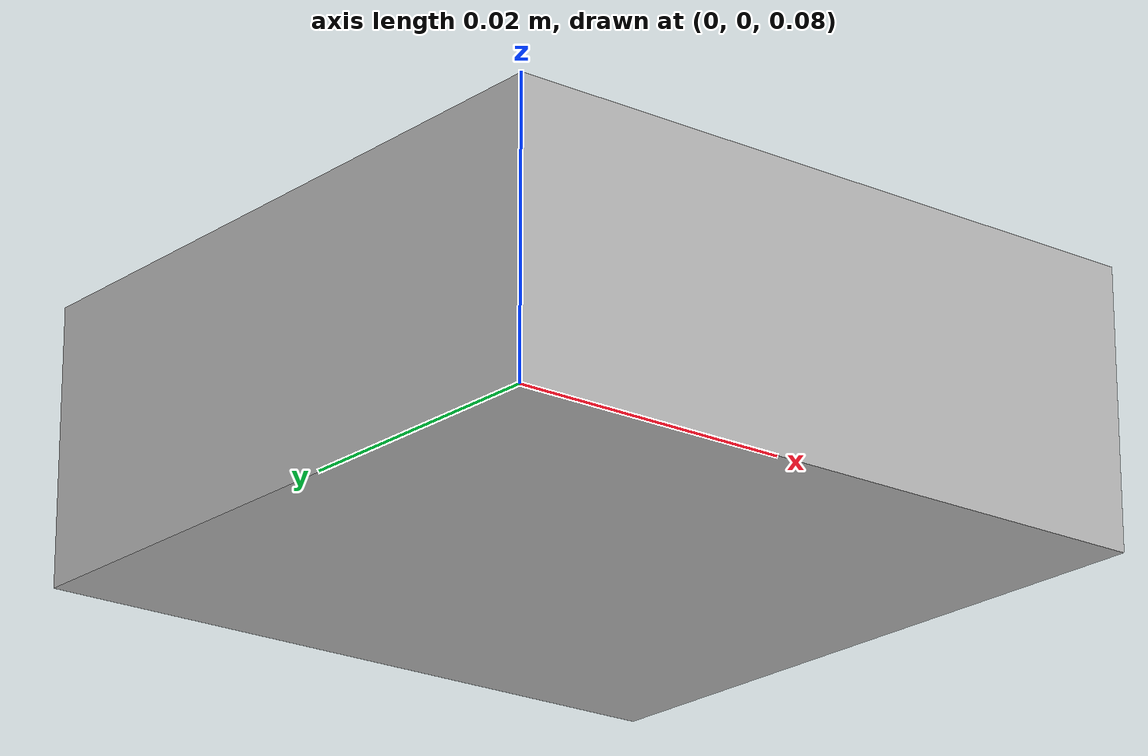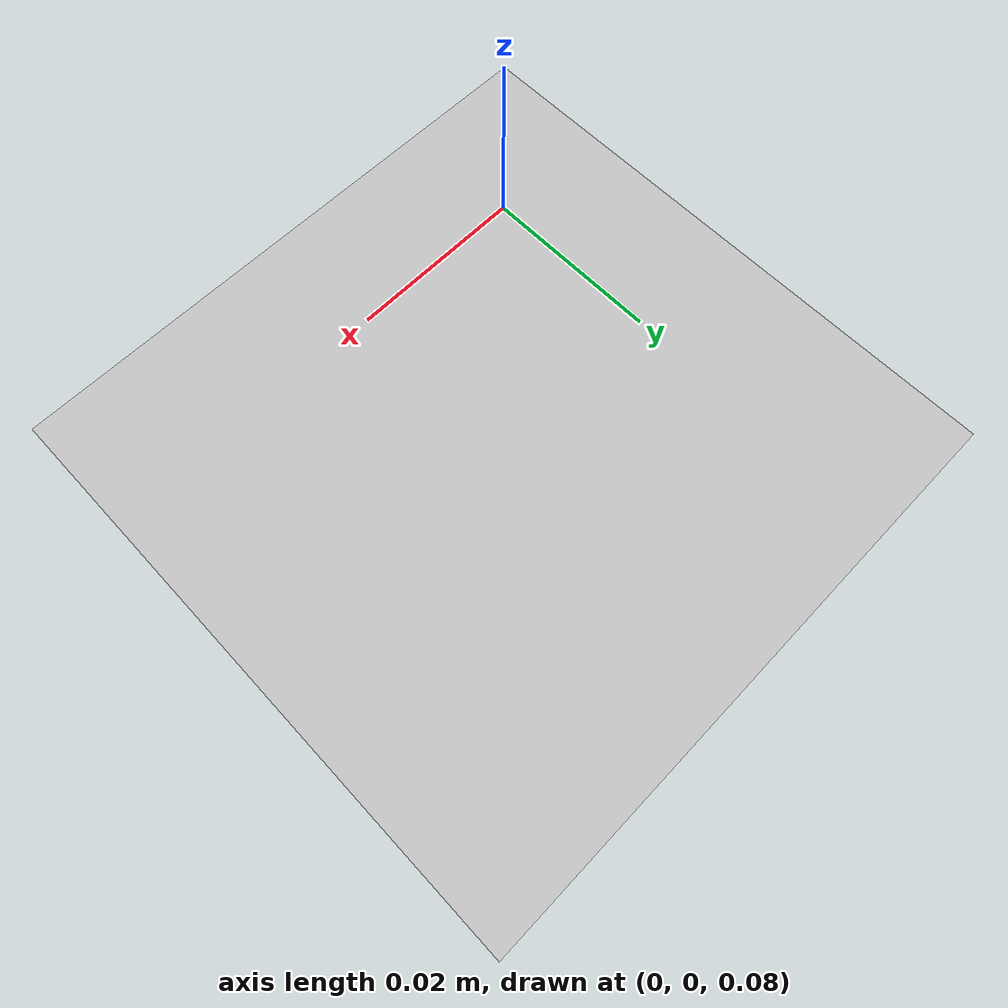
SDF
<?xml version="1.0" ?>
<sdf version="1.10">

  <model name="camera">
    <pose>0 0 0.1 0 1.57 0</pose>
    <link name="camera_link">
      <pose>0.01 0.025 0.025 0 0 0</pose>
      <inertial>
        <mass>0.00</mass>
        <inertia>
          <ixx>4.15e-6</ixx>
          <ixy>0</ixy>
          <ixz>0</ixz>
          <iyy>2.407e-6</iyy>
          <iyz>0</iyz>
          <izz>2.407e-6</izz>
        </inertia>
      </inertial>
      <visual name="visual">
        <geometry>
          <box>
            <size>0.02 0.05 0.05</size>
          </box>
        </geometry>
      </visual>
      <sensor name="camera" type="camera">
        <camera>
          <horizontal_fov>1.047</horizontal_fov>
          <image>
            <width>640</width>
            <height>480</height>
          </image>
          <clip>
            <near>0.1</near>
            <far>100</far>
          </clip>
          <noise>
            <type>gaussian</type>
            <mean>0.0</mean>
            <stddev>0.001</stddev>
          </noise>
        </camera>
        <always_on>1</always_on>
        <update_rate>30</update_rate>
        <visualize>true</visualize>
        <topic>camera</topic>
      </sensor>
    </link>
  </model>

</sdf>
